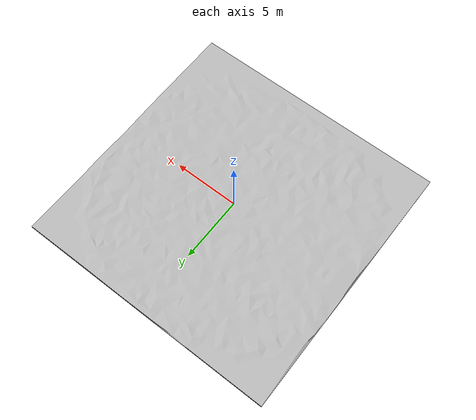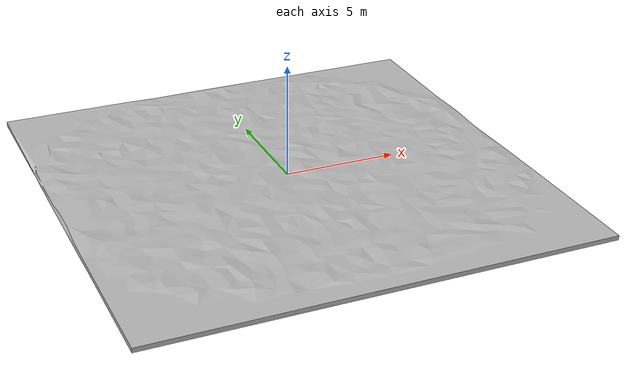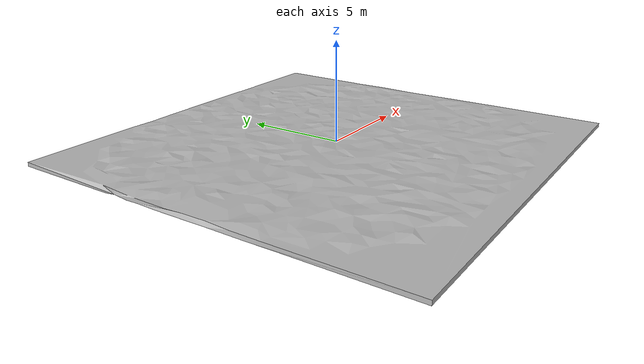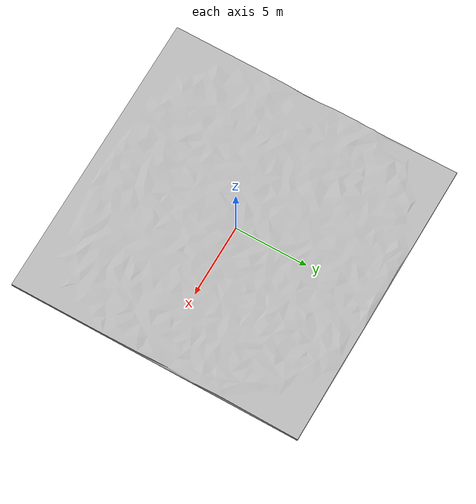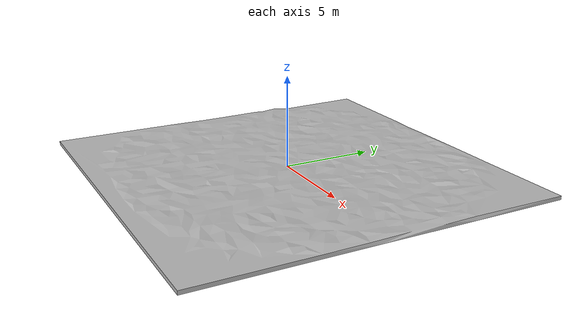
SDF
<?xml version="1.0" ?>
<sdf version="1.5">
  <model name="custom_terrain">
    <static>true</static>

    <link name="link">
      <collision name="collision">
        <geometry>
          <mesh>
            <uri>model://custom_terrain/meshes/terrain.stl</uri>
          </mesh>
        </geometry>
      </collision>
      <visual name="visual">
        <geometry>
          <mesh>
            <uri>model://custom_terrain/meshes/terrain.stl</uri>
          </mesh>
        </geometry>
        <material>
          <script>
            <uri>model://custom_terrain/materials/scripts</uri>
            <uri>model://custom_terrain/materials/textures</uri>
            <name>custom_terrain/terrain</name>
          </script>
        </material>
      </visual>
    </link>

  </model>
</sdf>
